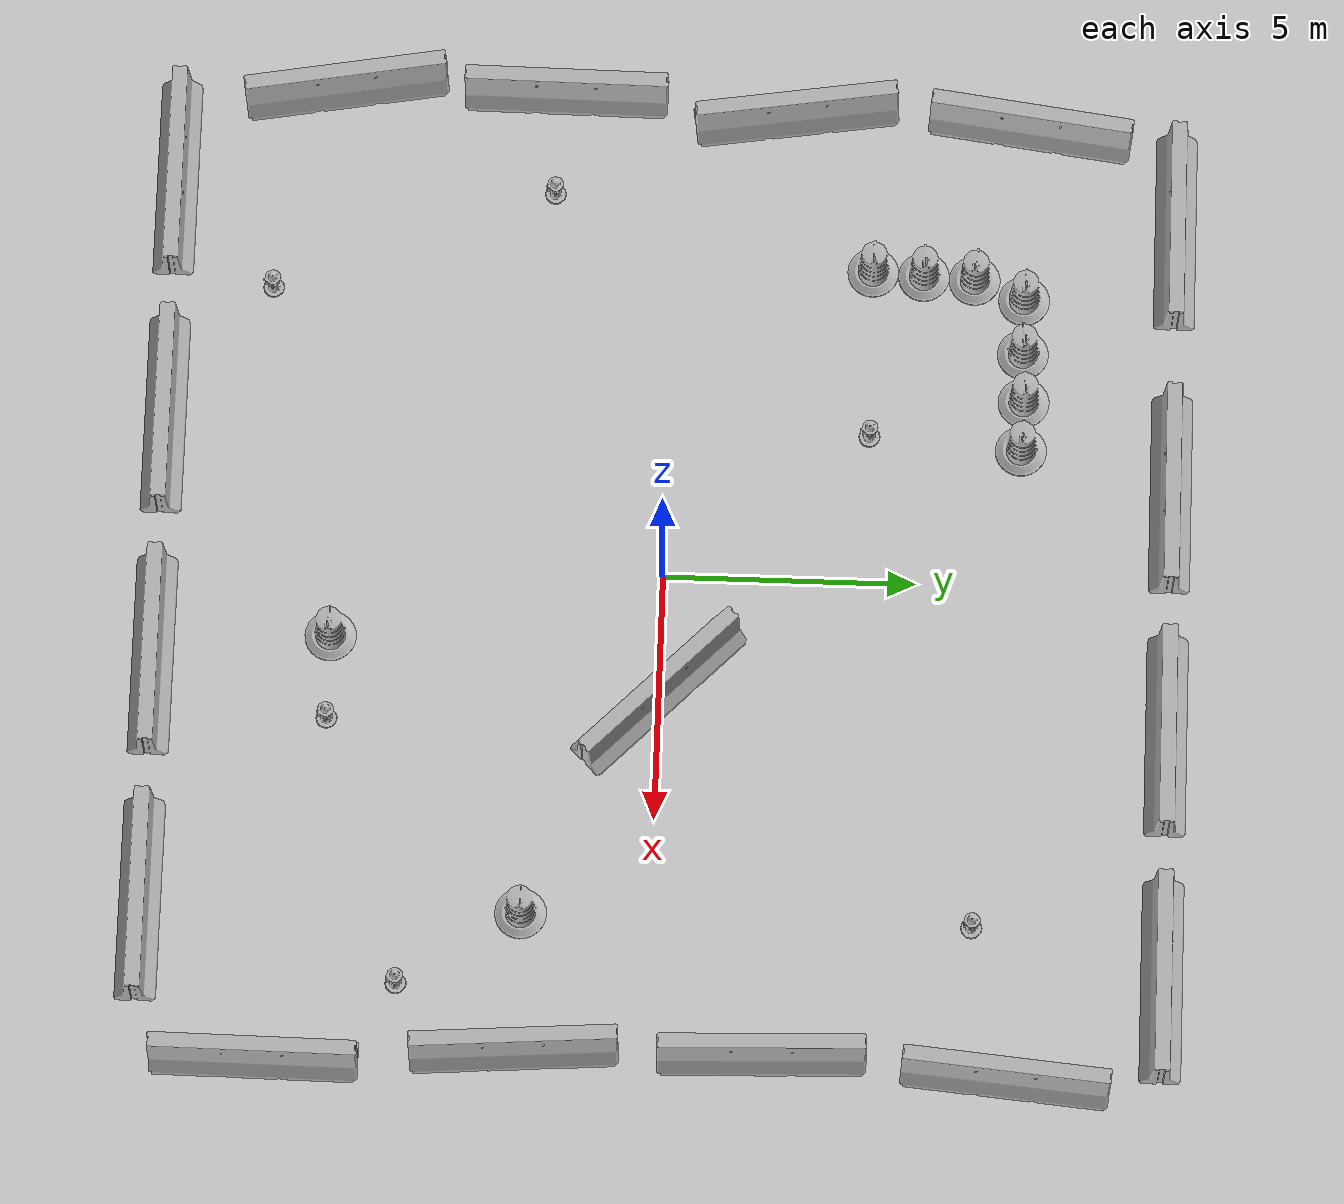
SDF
<sdf version="1.6">
 <world name="default">
  <light name="sun" type="directional">
   <pose>0 0 10 0 -0 0</pose>
   <diffuse>0.8 0.8 0.8 1</diffuse>
   <specular>0.2 0.2 0.2 1</specular>
   <attenuation>
    <range>1000</range>
    <constant>0.9</constant>
    <linear>0.01</linear>
    <quadratic>0.001</quadratic>
   </attenuation>
   <direction>-0.5 0.1 -0.9</direction>
  </light>
  <model name="ground_plane">
   <static>1</static>
   <link name="link">
    <collision name="collision">
     <geometry><plane><normal>0 0 1</normal><size>100 100</size></plane></geometry>
     <surface><friction><ode><mu>100</mu><mu2>50</mu2></ode></friction></surface>
    </collision>
    <visual name="visual">
     <cast_shadows>0</cast_shadows>
     <geometry><plane><normal>0 0 1</normal><size>100 100</size></plane></geometry>
     <material>
      <script><uri>file://media/materials/scripts/gazebo.material</uri><name>Gazebo/Grey</name></script>
     </material>
    </visual>
    <velocity_decay><linear>0</linear><angular>0</angular></velocity_decay>
   </link>
  </model>
  <physics type="ode">
   <max_step_size>0.01</max_step_size>
   <real_time_factor>1</real_time_factor>
   <real_time_update_rate>100</real_time_update_rate>
   <gravity>0 0 -9.8</gravity>
  </physics>
  <scene><ambient>0.4 0.4 0.4 1</ambient><background>0.7 0.7 0.7 1</background><shadows>1</shadows></scene>
  <model name="jersey_barrier">
   <static>1</static>
   <link name="link">
    <visual name="visual">
     <geometry>
      <mesh><uri>model://jersey_barrier/meshes/jersey_barrier.dae</uri><scale>1 1 1</scale></mesh>
     </geometry>
    </visual>
    <collision name="upright">
     <pose>0 0 0.5715 0 -0 0</pose>
     <geometry><box><size>4.06542 0.3063 1.143</size></box></geometry>
    </collision>
    <collision name="base">
     <pose>0 0 0.032258 0 -0 0</pose>
     <geometry><box><size>4.06542 0.8107 0.064516</size></box></geometry>
    </collision>
    <collision name="base2">
     <pose>0 0 0.1 0 -0 0</pose>
     <geometry><box><size>4.06542 0.65 0.1</size></box></geometry>
    </collision>
    <collision name="base3">
     <pose>0 0 0.2 0 -0 0</pose>
     <geometry><box><size>4.06542 0.5 0.1</size></box></geometry>
    </collision>
    <collision name="left-angle">
     <pose>0 -0.224 0.2401 0.9 -0 0</pose>
     <geometry><box><size>4.06542 0.5 0.064516</size></box></geometry>
    </collision>
    <collision name="right-angle">
     <pose>0 0.224 0.2401 -0.9 0 0</pose>
     <geometry><box><size>4.06542 0.5 0.064516</size></box></geometry>
    </collision>
    <velocity_decay><linear>0</linear><angular>0</angular></velocity_decay>
   </link>
   <pose>-8 -10 0 0 -0 0</pose>
  </model>
  <model name="jersey_barrier_0">
   <static>1</static>
   <link name="link">
    <visual name="visual">
     <geometry>
      <mesh><uri>model://jersey_barrier/meshes/jersey_barrier.dae</uri><scale>1 1 1</scale></mesh>
     </geometry>
    </visual>
    <collision name="upright">
     <pose>0 0 0.5715 0 -0 0</pose>
     <geometry><box><size>4.06542 0.3063 1.143</size></box></geometry>
    </collision>
    <collision name="base">
     <pose>0 0 0.032258 0 -0 0</pose>
     <geometry><box><size>4.06542 0.8107 0.064516</size></box></geometry>
    </collision>
    <collision name="base2">
     <pose>0 0 0.1 0 -0 0</pose>
     <geometry><box><size>4.06542 0.65 0.1</size></box></geometry>
    </collision>
    <collision name="base3">
     <pose>0 0 0.2 0 -0 0</pose>
     <geometry><box><size>4.06542 0.5 0.1</size></box></geometry>
    </collision>
    <collision name="left-angle">
     <pose>0 -0.224 0.2401 0.9 -0 0</pose>
     <geometry><box><size>4.06542 0.5 0.064516</size></box></geometry>
    </collision>
    <collision name="right-angle">
     <pose>0 0.224 0.2401 -0.9 0 0</pose>
     <geometry><box><size>4.06542 0.5 0.064516</size></box></geometry>
    </collision>
    <velocity_decay><linear>0</linear><angular>0</angular></velocity_decay>
   </link>
   <pose>-3 -10 0 0 -0 0</pose>
  </model>
  <model name="jersey_barrier_1">
   <static>1</static>
   <link name="link">
    <visual name="visual">
     <geometry>
      <mesh><uri>model://jersey_barrier/meshes/jersey_barrier.dae</uri><scale>1 1 1</scale></mesh>
     </geometry>
    </visual>
    <collision name="upright">
     <pose>0 0 0.5715 0 -0 0</pose>
     <geometry><box><size>4.06542 0.3063 1.143</size></box></geometry>
    </collision>
    <collision name="base">
     <pose>0 0 0.032258 0 -0 0</pose>
     <geometry><box><size>4.06542 0.8107 0.064516</size></box></geometry>
    </collision>
    <collision name="base2">
     <pose>0 0 0.1 0 -0 0</pose>
     <geometry><box><size>4.06542 0.65 0.1</size></box></geometry>
    </collision>
    <collision name="base3">
     <pose>0 0 0.2 0 -0 0</pose>
     <geometry><box><size>4.06542 0.5 0.1</size></box></geometry>
    </collision>
    <collision name="left-angle">
     <pose>0 -0.224 0.2401 0.9 -0 0</pose>
     <geometry><box><size>4.06542 0.5 0.064516</size></box></geometry>
    </collision>
    <collision name="right-angle">
     <pose>0 0.224 0.2401 -0.9 0 0</pose>
     <geometry><box><size>4.06542 0.5 0.064516</size></box></geometry>
    </collision>
    <velocity_decay><linear>0</linear><angular>0</angular></velocity_decay>
   </link>
   <pose>2 -10 0 0 -0 0</pose>
  </model>
  <model name="jersey_barrier_2">
   <static>1</static>
   <link name="link">
    <visual name="visual">
     <geometry>
      <mesh><uri>model://jersey_barrier/meshes/jersey_barrier.dae</uri><scale>1 1 1</scale></mesh>
     </geometry>
    </visual>
    <collision name="upright">
     <pose>0 0 0.5715 0 -0 0</pose>
     <geometry><box><size>4.06542 0.3063 1.143</size></box></geometry>
    </collision>
    <collision name="base">
     <pose>0 0 0.032258 0 -0 0</pose>
     <geometry><box><size>4.06542 0.8107 0.064516</size></box></geometry>
    </collision>
    <collision name="base2">
     <pose>0 0 0.1 0 -0 0</pose>
     <geometry><box><size>4.06542 0.65 0.1</size></box></geometry>
    </collision>
    <collision name="base3">
     <pose>0 0 0.2 0 -0 0</pose>
     <geometry><box><size>4.06542 0.5 0.1</size></box></geometry>
    </collision>
    <collision name="left-angle">
     <pose>0 -0.224 0.2401 0.9 -0 0</pose>
     <geometry><box><size>4.06542 0.5 0.064516</size></box></geometry>
    </collision>
    <collision name="right-angle">
     <pose>0 0.224 0.2401 -0.9 0 0</pose>
     <geometry><box><size>4.06542 0.5 0.064516</size></box></geometry>
    </collision>
    <velocity_decay><linear>0</linear><angular>0</angular></velocity_decay>
   </link>
   <pose>7 -10 0 0 -0 0</pose>
  </model>
  <model name="jersey_barrier_3">
   <static>1</static>
   <link name="link">
    <visual name="visual">
     <geometry>
      <mesh><uri>model://jersey_barrier/meshes/jersey_barrier.dae</uri><scale>1 1 1</scale></mesh>
     </geometry>
    </visual>
    <collision name="upright">
     <pose>0 0 0.5715 0 -0 0</pose>
     <geometry><box><size>4.06542 0.3063 1.143</size></box></geometry>
    </collision>
    <collision name="base">
     <pose>0 0 0.032258 0 -0 0</pose>
     <geometry><box><size>4.06542 0.8107 0.064516</size></box></geometry>
    </collision>
    <collision name="base2">
     <pose>0 0 0.1 0 -0 0</pose>
     <geometry><box><size>4.06542 0.65 0.1</size></box></geometry>
    </collision>
    <collision name="base3">
     <pose>0 0 0.2 0 -0 0</pose>
     <geometry><box><size>4.06542 0.5 0.1</size></box></geometry>
    </collision>
    <collision name="left-angle">
     <pose>0 -0.224 0.2401 0.9 -0 0</pose>
     <geometry><box><size>4.06542 0.5 0.064516</size></box></geometry>
    </collision>
    <collision name="right-angle">
     <pose>0 0.224 0.2401 -0.9 0 0</pose>
     <geometry><box><size>4.06542 0.5 0.064516</size></box></geometry>
    </collision>
    <velocity_decay><linear>0</linear><angular>0</angular></velocity_decay>
   </link>
   <pose>-7.50675 10 0 0 -0 0</pose>
  </model>
  <model name="jersey_barrier_4">
   <static>1</static>
   <link name="link">
    <visual name="visual">
     <geometry>
      <mesh><uri>model://jersey_barrier/meshes/jersey_barrier.dae</uri><scale>1 1 1</scale></mesh>
     </geometry>
    </visual>
    <collision name="upright">
     <pose>0 0 0.5715 0 -0 0</pose>
     <geometry><box><size>4.06542 0.3063 1.143</size></box></geometry>
    </collision>
    <collision name="base">
     <pose>0 0 0.032258 0 -0 0</pose>
     <geometry><box><size>4.06542 0.8107 0.064516</size></box></geometry>
    </collision>
    <collision name="base2">
     <pose>0 0 0.1 0 -0 0</pose>
     <geometry><box><size>4.06542 0.65 0.1</size></box></geometry>
    </collision>
    <collision name="base3">
     <pose>0 0 0.2 0 -0 0</pose>
     <geometry><box><size>4.06542 0.5 0.1</size></box></geometry>
    </collision>
    <collision name="left-angle">
     <pose>0 -0.224 0.2401 0.9 -0 0</pose>
     <geometry><box><size>4.06542 0.5 0.064516</size></box></geometry>
    </collision>
    <collision name="right-angle">
     <pose>0 0.224 0.2401 -0.9 0 0</pose>
     <geometry><box><size>4.06542 0.5 0.064516</size></box></geometry>
    </collision>
    <velocity_decay><linear>0</linear><angular>0</angular></velocity_decay>
   </link>
   <pose>-2 10 0 0 -0 0</pose>
  </model>
  <model name="jersey_barrier_5">
   <static>1</static>
   <link name="link">
    <visual name="visual">
     <geometry>
      <mesh><uri>model://jersey_barrier/meshes/jersey_barrier.dae</uri><scale>1 1 1</scale></mesh>
     </geometry>
    </visual>
    <collision name="upright">
     <pose>0 0 0.5715 0 -0 0</pose>
     <geometry><box><size>4.06542 0.3063 1.143</size></box></geometry>
    </collision>
    <collision name="base">
     <pose>0 0 0.032258 0 -0 0</pose>
     <geometry><box><size>4.06542 0.8107 0.064516</size></box></geometry>
    </collision>
    <collision name="base2">
     <pose>0 0 0.1 0 -0 0</pose>
     <geometry><box><size>4.06542 0.65 0.1</size></box></geometry>
    </collision>
    <collision name="base3">
     <pose>0 0 0.2 0 -0 0</pose>
     <geometry><box><size>4.06542 0.5 0.1</size></box></geometry>
    </collision>
    <collision name="left-angle">
     <pose>0 -0.224 0.2401 0.9 -0 0</pose>
     <geometry><box><size>4.06542 0.5 0.064516</size></box></geometry>
    </collision>
    <collision name="right-angle">
     <pose>0 0.224 0.2401 -0.9 0 0</pose>
     <geometry><box><size>4.06542 0.5 0.064516</size></box></geometry>
    </collision>
    <velocity_decay><linear>0</linear><angular>0</angular></velocity_decay>
   </link>
   <pose>3 10 0 0 -0 0</pose>
  </model>
  <model name="jersey_barrier_6">
   <static>1</static>
   <link name="link">
    <visual name="visual">
     <geometry>
      <mesh><uri>model://jersey_barrier/meshes/jersey_barrier.dae</uri><scale>1 1 1</scale></mesh>
     </geometry>
    </visual>
    <collision name="upright">
     <pose>0 0 0.5715 0 -0 0</pose>
     <geometry><box><size>4.06542 0.3063 1.143</size></box></geometry>
    </collision>
    <collision name="base">
     <pose>0 0 0.032258 0 -0 0</pose>
     <geometry><box><size>4.06542 0.8107 0.064516</size></box></geometry>
    </collision>
    <collision name="base2">
     <pose>0 0 0.1 0 -0 0</pose>
     <geometry><box><size>4.06542 0.65 0.1</size></box></geometry>
    </collision>
    <collision name="base3">
     <pose>0 0 0.2 0 -0 0</pose>
     <geometry><box><size>4.06542 0.5 0.1</size></box></geometry>
    </collision>
    <collision name="left-angle">
     <pose>0 -0.224 0.2401 0.9 -0 0</pose>
     <geometry><box><size>4.06542 0.5 0.064516</size></box></geometry>
    </collision>
    <collision name="right-angle">
     <pose>0 0.224 0.2401 -0.9 0 0</pose>
     <geometry><box><size>4.06542 0.5 0.064516</size></box></geometry>
    </collision>
    <velocity_decay><linear>0</linear><angular>0</angular></velocity_decay>
   </link>
   <pose>8 10 0 0 -0 0</pose>
  </model>
  <model name="jersey_barrier_7">
   <static>1</static>
   <link name="link">
    <visual name="visual">
     <geometry>
      <mesh><uri>model://jersey_barrier/meshes/jersey_barrier.dae</uri><scale>1 1 1</scale></mesh>
     </geometry>
    </visual>
    <collision name="upright">
     <pose>0 0 0.5715 0 -0 0</pose>
     <geometry><box><size>4.06542 0.3063 1.143</size></box></geometry>
    </collision>
    <collision name="base">
     <pose>0 0 0.032258 0 -0 0</pose>
     <geometry><box><size>4.06542 0.8107 0.064516</size></box></geometry>
    </collision>
    <collision name="base2">
     <pose>0 0 0.1 0 -0 0</pose>
     <geometry><box><size>4.06542 0.65 0.1</size></box></geometry>
    </collision>
    <collision name="base3">
     <pose>0 0 0.2 0 -0 0</pose>
     <geometry><box><size>4.06542 0.5 0.1</size></box></geometry>
    </collision>
    <collision name="left-angle">
     <pose>0 -0.224 0.2401 0.9 -0 0</pose>
     <geometry><box><size>4.06542 0.5 0.064516</size></box></geometry>
    </collision>
    <collision name="right-angle">
     <pose>0 0.224 0.2401 -0.9 0 0</pose>
     <geometry><box><size>4.06542 0.5 0.064516</size></box></geometry>
    </collision>
    <velocity_decay><linear>0</linear><angular>0</angular></velocity_decay>
   </link>
   <pose>9.74902 -2.57759 0 0 -0 1.64</pose>
  </model>
  <model name="jersey_barrier_8">
   <static>1</static>
   <link name="link">
    <visual name="visual">
     <geometry>
      <mesh><uri>model://jersey_barrier/meshes/jersey_barrier.dae</uri><scale>1 1 1</scale></mesh>
     </geometry>
    </visual>
    <collision name="upright">
     <pose>0 0 0.5715 0 -0 0</pose>
     <geometry><box><size>4.06542 0.3063 1.143</size></box></geometry>
    </collision>
    <collision name="base">
     <pose>0 0 0.032258 0 -0 0</pose>
     <geometry><box><size>4.06542 0.8107 0.064516</size></box></geometry>
    </collision>
    <collision name="base2">
     <pose>0 0 0.1 0 -0 0</pose>
     <geometry><box><size>4.06542 0.65 0.1</size></box></geometry>
    </collision>
    <collision name="base3">
     <pose>0 0 0.2 0 -0 0</pose>
     <geometry><box><size>4.06542 0.5 0.1</size></box></geometry>
    </collision>
    <collision name="left-angle">
     <pose>0 -0.224 0.2401 0.9 -0 0</pose>
     <geometry><box><size>4.06542 0.5 0.064516</size></box></geometry>
    </collision>
    <collision name="right-angle">
     <pose>0 0.224 0.2401 -0.9 0 0</pose>
     <geometry><box><size>4.06542 0.5 0.064516</size></box></geometry>
    </collision>
    <velocity_decay><linear>0</linear><angular>0</angular></velocity_decay>
   </link>
   <pose>9.70141 2.24369 0 0 -0 1.6</pose>
  </model>
  <model name="jersey_barrier_9">
   <static>1</static>
   <link name="link">
    <visual name="visual">
     <geometry>
      <mesh><uri>model://jersey_barrier/meshes/jersey_barrier.dae</uri><scale>1 1 1</scale></mesh>
     </geometry>
    </visual>
    <collision name="upright">
     <pose>0 0 0.5715 0 -0 0</pose>
     <geometry><box><size>4.06542 0.3063 1.143</size></box></geometry>
    </collision>
    <collision name="base">
     <pose>0 0 0.032258 0 -0 0</pose>
     <geometry><box><size>4.06542 0.8107 0.064516</size></box></geometry>
    </collision>
    <collision name="base2">
     <pose>0 0 0.1 0 -0 0</pose>
     <geometry><box><size>4.06542 0.65 0.1</size></box></geometry>
    </collision>
    <collision name="base3">
     <pose>0 0 0.2 0 -0 0</pose>
     <geometry><box><size>4.06542 0.5 0.1</size></box></geometry>
    </collision>
    <collision name="left-angle">
     <pose>0 -0.224 0.2401 0.9 -0 0</pose>
     <geometry><box><size>4.06542 0.5 0.064516</size></box></geometry>
    </collision>
    <collision name="right-angle">
     <pose>0 0.224 0.2401 -0.9 0 0</pose>
     <geometry><box><size>4.06542 0.5 0.064516</size></box></geometry>
    </collision>
    <velocity_decay><linear>0</linear><angular>0</angular></velocity_decay>
   </link>
   <pose>-10.0607 -6.69856 0 0 0 -1.4</pose>
  </model>
  <model name="jersey_barrier_10">
   <static>1</static>
   <link name="link">
    <visual name="visual">
     <geometry>
      <mesh><uri>model://jersey_barrier/meshes/jersey_barrier.dae</uri><scale>1 1 1</scale></mesh>
     </geometry>
    </visual>
    <collision name="upright">
     <pose>0 0 0.5715 0 -0 0</pose>
     <geometry><box><size>4.06542 0.3063 1.143</size></box></geometry>
    </collision>
    <collision name="base">
     <pose>0 0 0.032258 0 -0 0</pose>
     <geometry><box><size>4.06542 0.8107 0.064516</size></box></geometry>
    </collision>
    <collision name="base2">
     <pose>0 0 0.1 0 -0 0</pose>
     <geometry><box><size>4.06542 0.65 0.1</size></box></geometry>
    </collision>
    <collision name="base3">
     <pose>0 0 0.2 0 -0 0</pose>
     <geometry><box><size>4.06542 0.5 0.1</size></box></geometry>
    </collision>
    <collision name="left-angle">
     <pose>0 -0.224 0.2401 0.9 -0 0</pose>
     <geometry><box><size>4.06542 0.5 0.064516</size></box></geometry>
    </collision>
    <collision name="right-angle">
     <pose>0 0.224 0.2401 -0.9 0 0</pose>
     <geometry><box><size>4.06542 0.5 0.064516</size></box></geometry>
    </collision>
    <velocity_decay><linear>0</linear><angular>0</angular></velocity_decay>
   </link>
   <pose>-10.0774 -2.27159 0 0 -0 1.56</pose>
  </model>
  <model name="jersey_barrier_11">
   <static>1</static>
   <link name="link">
    <visual name="visual">
     <geometry>
      <mesh><uri>model://jersey_barrier/meshes/jersey_barrier.dae</uri><scale>1 1 1</scale></mesh>
     </geometry>
    </visual>
    <collision name="upright">
     <pose>0 0 0.5715 0 -0 0</pose>
     <geometry><box><size>4.06542 0.3063 1.143</size></box></geometry>
    </collision>
    <collision name="base">
     <pose>0 0 0.032258 0 -0 0</pose>
     <geometry><box><size>4.06542 0.8107 0.064516</size></box></geometry>
    </collision>
    <collision name="base2">
     <pose>0 0 0.1 0 -0 0</pose>
     <geometry><box><size>4.06542 0.65 0.1</size></box></geometry>
    </collision>
    <collision name="base3">
     <pose>0 0 0.2 0 -0 0</pose>
     <geometry><box><size>4.06542 0.5 0.1</size></box></geometry>
    </collision>
    <collision name="left-angle">
     <pose>0 -0.224 0.2401 0.9 -0 0</pose>
     <geometry><box><size>4.06542 0.5 0.064516</size></box></geometry>
    </collision>
    <collision name="right-angle">
     <pose>0 0.224 0.2401 -0.9 0 0</pose>
     <geometry><box><size>4.06542 0.5 0.064516</size></box></geometry>
    </collision>
    <velocity_decay><linear>0</linear><angular>0</angular></velocity_decay>
   </link>
   <pose>-9.77013 2.34791 0 0 -0 1.72</pose>
  </model>
  <model name="jersey_barrier_12">
   <static>1</static>
   <link name="link">
    <visual name="visual">
     <geometry>
      <mesh><uri>model://jersey_barrier/meshes/jersey_barrier.dae</uri><scale>1 1 1</scale></mesh>
     </geometry>
    </visual>
    <collision name="upright">
     <pose>0 0 0.5715 0 -0 0</pose>
     <geometry><box><size>4.06542 0.3063 1.143</size></box></geometry>
    </collision>
    <collision name="base">
     <pose>0 0 0.032258 0 -0 0</pose>
     <geometry><box><size>4.06542 0.8107 0.064516</size></box></geometry>
    </collision>
    <collision name="base2">
     <pose>0 0 0.1 0 -0 0</pose>
     <geometry><box><size>4.06542 0.65 0.1</size></box></geometry>
    </collision>
    <collision name="base3">
     <pose>0 0 0.2 0 -0 0</pose>
     <geometry><box><size>4.06542 0.5 0.1</size></box></geometry>
    </collision>
    <collision name="left-angle">
     <pose>0 -0.224 0.2401 0.9 -0 0</pose>
     <geometry><box><size>4.06542 0.5 0.064516</size></box></geometry>
    </collision>
    <collision name="right-angle">
     <pose>0 0.224 0.2401 -0.9 0 0</pose>
     <geometry><box><size>4.06542 0.5 0.064516</size></box></geometry>
    </collision>
    <velocity_decay><linear>0</linear><angular>0</angular></velocity_decay>
   </link>
   <pose>10.0879 -7.62159 0 0 -0 1.56</pose>
  </model>
  <model name="jersey_barrier_13">
   <static>1</static>
   <link name="link">
    <visual name="visual">
     <geometry>
      <mesh><uri>model://jersey_barrier/meshes/jersey_barrier.dae</uri><scale>1 1 1</scale></mesh>
     </geometry>
    </visual>
    <collision name="upright">
     <pose>0 0 0.5715 0 -0 0</pose>
     <geometry><box><size>4.06542 0.3063 1.143</size></box></geometry>
    </collision>
    <collision name="base">
     <pose>0 0 0.032258 0 -0 0</pose>
     <geometry><box><size>4.06542 0.8107 0.064516</size></box></geometry>
    </collision>
    <collision name="base2">
     <pose>0 0 0.1 0 -0 0</pose>
     <geometry><box><size>4.06542 0.65 0.1</size></box></geometry>
    </collision>
    <collision name="base3">
     <pose>0 0 0.2 0 -0 0</pose>
     <geometry><box><size>4.06542 0.5 0.1</size></box></geometry>
    </collision>
    <collision name="left-angle">
     <pose>0 -0.224 0.2401 0.9 -0 0</pose>
     <geometry><box><size>4.06542 0.5 0.064516</size></box></geometry>
    </collision>
    <collision name="right-angle">
     <pose>0 0.224 0.2401 -0.9 0 0</pose>
     <geometry><box><size>4.06542 0.5 0.064516</size></box></geometry>
    </collision>
    <velocity_decay><linear>0</linear><angular>0</angular></velocity_decay>
   </link>
   <pose>10 7 0 0 -0 1.48</pose>
  </model>
  <model name="jersey_barrier_14">
   <static>1</static>
   <link name="link">
    <visual name="visual">
     <geometry>
      <mesh><uri>model://jersey_barrier/meshes/jersey_barrier.dae</uri><scale>1 1 1</scale></mesh>
     </geometry>
    </visual>
    <collision name="upright">
     <pose>0 0 0.5715 0 -0 0</pose>
     <geometry><box><size>4.06542 0.3063 1.143</size></box></geometry>
    </collision>
    <collision name="base">
     <pose>0 0 0.032258 0 -0 0</pose>
     <geometry><box><size>4.06542 0.8107 0.064516</size></box></geometry>
    </collision>
    <collision name="base2">
     <pose>0 0 0.1 0 -0 0</pose>
     <geometry><box><size>4.06542 0.65 0.1</size></box></geometry>
    </collision>
    <collision name="base3">
     <pose>0 0 0.2 0 -0 0</pose>
     <geometry><box><size>4.06542 0.5 0.1</size></box></geometry>
    </collision>
    <collision name="left-angle">
     <pose>0 -0.224 0.2401 0.9 -0 0</pose>
     <geometry><box><size>4.06542 0.5 0.064516</size></box></geometry>
    </collision>
    <collision name="right-angle">
     <pose>0 0.224 0.2401 -0.9 0 0</pose>
     <geometry><box><size>4.06542 0.5 0.064516</size></box></geometry>
    </collision>
    <velocity_decay><linear>0</linear><angular>0</angular></velocity_decay>
   </link>
   <pose>-9.64482 7.05946 0 0 -0 1.44</pose>
  </model>
  <model name="fire_hydrant">
   <static>1</static>
   <link name="link">
    <collision name="collision">
     <geometry><mesh><uri>model://fire_hydrant/meshes/fire_hydrant.dae</uri><scale>1 1 1</scale></mesh></geometry>
    </collision>
    <visual name="visual">
     <geometry><mesh><uri>model://fire_hydrant/meshes/fire_hydrant.dae</uri><scale>1 1 1</scale></mesh></geometry>
    </visual>
    <velocity_decay><linear>0</linear><angular>0</angular></velocity_decay>
   </link>
   <pose>3.18024 -6.51118 0 0 -0 0</pose>
  </model>
  <model name="fire_hydrant_0">
   <static>1</static>
   <link name="link">
    <collision name="collision">
     <geometry><mesh><uri>model://fire_hydrant/meshes/fire_hydrant.dae</uri><scale>1 1 1</scale></mesh></geometry>
    </collision>
    <visual name="visual">
     <geometry><mesh><uri>model://fire_hydrant/meshes/fire_hydrant.dae</uri><scale>1 1 1</scale></mesh></geometry>
    </visual>
    <velocity_decay><linear>0</linear><angular>0</angular></velocity_decay>
   </link>
   <pose>-3 4 0 0 -0 0</pose>
  </model>
  <model name="fire_hydrant_1">
   <static>1</static>
   <link name="link">
    <collision name="collision">
     <geometry><mesh><uri>model://fire_hydrant/meshes/fire_hydrant.dae</uri><scale>1 1 1</scale></mesh></geometry>
    </collision>
    <visual name="visual">
     <geometry><mesh><uri>model://fire_hydrant/meshes/fire_hydrant.dae</uri><scale>1 1 1</scale></mesh></geometry>
    </visual>
    <velocity_decay><linear>0</linear><angular>0</angular></velocity_decay>
   </link>
   <pose>-7.90686 -2.41363 0 0 -0 0</pose>
  </model>
  <model name="jersey_barrier_15">
   <static>1</static>
   <link name="link">
    <visual name="visual">
     <geometry>
      <mesh><uri>model://jersey_barrier/meshes/jersey_barrier.dae</uri><scale>1 1 1</scale></mesh>
     </geometry>
    </visual>
    <collision name="upright">
     <pose>0 0 0.5715 0 -0 0</pose>
     <geometry><box><size>4.06542 0.3063 1.143</size></box></geometry>
    </collision>
    <collision name="base">
     <pose>0 0 0.032258 0 -0 0</pose>
     <geometry><box><size>4.06542 0.8107 0.064516</size></box></geometry>
    </collision>
    <collision name="base2">
     <pose>0 0 0.1 0 -0 0</pose>
     <geometry><box><size>4.06542 0.65 0.1</size></box></geometry>
    </collision>
    <collision name="base3">
     <pose>0 0 0.2 0 -0 0</pose>
     <geometry><box><size>4.06542 0.5 0.1</size></box></geometry>
    </collision>
    <collision name="left-angle">
     <pose>0 -0.224 0.2401 0.9 -0 0</pose>
     <geometry><box><size>4.06542 0.5 0.064516</size></box></geometry>
    </collision>
    <collision name="right-angle">
     <pose>0 0.224 0.2401 -0.9 0 0</pose>
     <geometry><box><size>4.06542 0.5 0.064516</size></box></geometry>
    </collision>
    <velocity_decay><linear>0</linear><angular>0</angular></velocity_decay>
   </link>
   <pose>2.45495 0 0 0 -0 2.36</pose>
  </model>
  <model name="Construction Barrel">
   <link name="link">
    <inertial>
     <pose>0 0 0.4 0 -0 0</pose>
     <mass>500</mass>
     <inertia><ixx>51.2096</ixx><iyy>51.2096</iyy><izz>25</izz><ixy>0</ixy><ixz>0</ixz><iyz>0</iyz></inertia>
    </inertial>
    <collision name="collision">
     <geometry>
      <mesh><uri>model://construction_barrel/meshes/construction_barrel.dae</uri><scale>1 1 1</scale></mesh>
     </geometry>
    </collision>
    <visual name="visual">
     <geometry>
      <mesh><uri>model://construction_barrel/meshes/construction_barrel.dae</uri><scale>1 1 1</scale></mesh>
     </geometry>
    </visual>
    <velocity_decay><linear>0</linear><angular>0</angular></velocity_decay>
   </link>
   <pose>7.00029 -2.54664 -9e-05 0.000308 -0.000178 -0.00064</pose>
   <static>0</static>
  </model>
  <model name="Construction Barrel_0">
   <link name="link">
    <inertial>
     <pose>0 0 0.4 0 -0 0</pose>
     <mass>500</mass>
     <inertia><ixx>51.2096</ixx><iyy>51.2096</iyy><izz>25</izz><ixy>0</ixy><ixz>0</ixz><iyz>0</iyz></inertia>
    </inertial>
    <collision name="collision">
     <geometry>
      <mesh><uri>model://construction_barrel/meshes/construction_barrel.dae</uri><scale>1 1 1</scale></mesh>
     </geometry>
    </collision>
    <visual name="visual">
     <geometry>
      <mesh><uri>model://construction_barrel/meshes/construction_barrel.dae</uri><scale>1 1 1</scale></mesh>
     </geometry>
    </visual>
    <velocity_decay><linear>0</linear><angular>0</angular></velocity_decay>
   </link>
   <pose>1.45168 -6.51144 -9e-05 0.000308 -0.000178 -0.000425</pose>
   <static>0</static>
  </model>
  <model name="Construction Barrel_1">
   <link name="link">
    <inertial>
     <pose>0 0 0.4 0 -0 0</pose>
     <mass>500</mass>
     <inertia><ixx>51.2096</ixx><iyy>51.2096</iyy><izz>25</izz><ixy>0</ixy><ixz>0</ixz><iyz>0</iyz></inertia>
    </inertial>
    <collision name="collision">
     <geometry>
      <mesh><uri>model://construction_barrel/meshes/construction_barrel.dae</uri><scale>1 1 1</scale></mesh>
     </geometry>
    </collision>
    <visual name="visual">
     <geometry>
      <mesh><uri>model://construction_barrel/meshes/construction_barrel.dae</uri><scale>1 1 1</scale></mesh>
     </geometry>
    </visual>
    <velocity_decay><linear>0</linear><angular>0</angular></velocity_decay>
   </link>
   <pose>-6.50478 3.98235 -9.1e-05 0.000308 -0.000178 -0.010467</pose>
   <static>0</static>
  </model>
  <model name="Construction Barrel_2">
   <link name="link">
    <inertial>
     <pose>0 0 0.4 0 -0 0</pose>
     <mass>500</mass>
     <inertia><ixx>51.2096</ixx><iyy>51.2096</iyy><izz>25</izz><ixy>0</ixy><ixz>0</ixz><iyz>0</iyz></inertia>
    </inertial>
    <collision name="collision">
     <geometry>
      <mesh><uri>model://construction_barrel/meshes/construction_barrel.dae</uri><scale>1 1 1</scale></mesh>
     </geometry>
    </collision>
    <visual name="visual">
     <geometry>
      <mesh><uri>model://construction_barrel/meshes/construction_barrel.dae</uri><scale>1 1 1</scale></mesh>
     </geometry>
    </visual>
    <velocity_decay><linear>0</linear><angular>0</angular></velocity_decay>
   </link>
   <pose>-6.45073 4.99633 -8.8e-05 -8.4e-05 0.000333 0.064702</pose>
   <static>0</static>
  </model>
  <model name="Construction Barrel_3">
   <link name="link">
    <inertial>
     <pose>0 0 0.4 0 -0 0</pose>
     <mass>500</mass>
     <inertia><ixx>51.2096</ixx><iyy>51.2096</iyy><izz>25</izz><ixy>0</ixy><ixz>0</ixz><iyz>0</iyz></inertia>
    </inertial>
    <collision name="collision">
     <geometry>
      <mesh><uri>model://construction_barrel/meshes/construction_barrel.dae</uri><scale>1 1 1</scale></mesh>
     </geometry>
    </collision>
    <visual name="visual">
     <geometry>
      <mesh><uri>model://construction_barrel/meshes/construction_barrel.dae</uri><scale>1 1 1</scale></mesh>
     </geometry>
    </visual>
    <velocity_decay><linear>0</linear><angular>0</angular></velocity_decay>
   </link>
   <pose>-6.40191 6.01072 -9.1e-05 0.00031 -0.000179 -0.121541</pose>
   <static>0</static>
  </model>
  <model name="Construction Barrel_4">
   <link name="link">
    <inertial>
     <pose>0 0 0.4 0 -0 0</pose>
     <mass>500</mass>
     <inertia><ixx>51.2096</ixx><iyy>51.2096</iyy><izz>25</izz><ixy>0</ixy><ixz>0</ixz><iyz>0</iyz></inertia>
    </inertial>
    <collision name="collision">
     <geometry>
      <mesh><uri>model://construction_barrel/meshes/construction_barrel.dae</uri><scale>1 1 1</scale></mesh>
     </geometry>
    </collision>
    <visual name="visual">
     <geometry>
      <mesh><uri>model://construction_barrel/meshes/construction_barrel.dae</uri><scale>1 1 1</scale></mesh>
     </geometry>
    </visual>
    <velocity_decay><linear>0</linear><angular>0</angular></velocity_decay>
   </link>
   <pose>-6.00644 7.00857 -8.8e-05 -8.1e-05 0.000332 -0.050092</pose>
   <static>0</static>
  </model>
  <model name="Construction Barrel_5">
   <link name="link">
    <inertial>
     <pose>0 0 0.4 0 -0 0</pose>
     <mass>500</mass>
     <inertia><ixx>51.2096</ixx><iyy>51.2096</iyy><izz>25</izz><ixy>0</ixy><ixz>0</ixz><iyz>0</iyz></inertia>
    </inertial>
    <collision name="collision">
     <geometry>
      <mesh><uri>model://construction_barrel/meshes/construction_barrel.dae</uri><scale>1 1 1</scale></mesh>
     </geometry>
    </collision>
    <visual name="visual">
     <geometry>
      <mesh><uri>model://construction_barrel/meshes/construction_barrel.dae</uri><scale>1 1 1</scale></mesh>
     </geometry>
    </visual>
    <velocity_decay><linear>0</linear><angular>0</angular></velocity_decay>
   </link>
   <pose>-4.87587 7.00816 -9e-05 0.000304 -0.000176 0.146055</pose>
   <static>0</static>
  </model>
  <model name="Construction Barrel_6">
   <link name="link">
    <inertial>
     <pose>0 0 0.4 0 -0 0</pose>
     <mass>500</mass>
     <inertia><ixx>51.2096</ixx><iyy>51.2096</iyy><izz>25</izz><ixy>0</ixy><ixz>0</ixz><iyz>0</iyz></inertia>
    </inertial>
    <collision name="collision">
     <geometry>
      <mesh><uri>model://construction_barrel/meshes/construction_barrel.dae</uri><scale>1 1 1</scale></mesh>
     </geometry>
    </collision>
    <visual name="visual">
     <geometry>
      <mesh><uri>model://construction_barrel/meshes/construction_barrel.dae</uri><scale>1 1 1</scale></mesh>
     </geometry>
    </visual>
    <velocity_decay><linear>0</linear><angular>0</angular></velocity_decay>
   </link>
   <pose>-3.86129 7.04539 -9e-05 0.000306 -0.000177 0.06679</pose>
   <static>0</static>
  </model>
  <model name="Construction Barrel_7">
   <link name="link">
    <inertial>
     <pose>0 0 0.4 0 -0 0</pose>
     <mass>500</mass>
     <inertia><ixx>51.2096</ixx><iyy>51.2096</iyy><izz>25</izz><ixy>0</ixy><ixz>0</ixz><iyz>0</iyz></inertia>
    </inertial>
    <collision name="collision">
     <geometry>
      <mesh><uri>model://construction_barrel/meshes/construction_barrel.dae</uri><scale>1 1 1</scale></mesh>
     </geometry>
    </collision>
    <visual name="visual">
     <geometry>
      <mesh><uri>model://construction_barrel/meshes/construction_barrel.dae</uri><scale>1 1 1</scale></mesh>
     </geometry>
    </visual>
    <velocity_decay><linear>0</linear><angular>0</angular></velocity_decay>
   </link>
   <pose>-2.8458 7.01445 -9.1e-05 0.000309 -0.000178 -0.041845</pose>
   <static>0</static>
  </model>
  <gravity>0 0 -9.8</gravity>
  <magnetic_field>6e-06 2.3e-05 -4.2e-05</magnetic_field>
  <atmosphere type="adiabatic"/>
  <spherical_coordinates>
   <surface_model>EARTH_WGS84</surface_model>
   <latitude_deg>0</latitude_deg>
   <longitude_deg>0</longitude_deg>
   <elevation>0</elevation>
   <heading_deg>0</heading_deg>
  </spherical_coordinates>
  <model name="fire_hydrant_1_clone">
   <static>1</static>
   <link name="link">
    <collision name="collision">
     <geometry><mesh><uri>model://fire_hydrant/meshes/fire_hydrant.dae</uri><scale>1 1 1</scale></mesh></geometry>
    </collision>
    <visual name="visual">
     <geometry><mesh><uri>model://fire_hydrant/meshes/fire_hydrant.dae</uri><scale>1 1 1</scale></mesh></geometry>
    </visual>
    <velocity_decay><linear>0</linear><angular>0</angular></velocity_decay>
   </link>
   <pose>-5.74674 -7.95866 0 0 -0 0</pose>
  </model>
  <model name="fire_hydrant_clone">
   <static>1</static>
   <link name="link">
    <collision name="collision">
     <geometry><mesh><uri>model://fire_hydrant/meshes/fire_hydrant.dae</uri><scale>1 1 1</scale></mesh></geometry>
    </collision>
    <visual name="visual">
     <geometry><mesh><uri>model://fire_hydrant/meshes/fire_hydrant.dae</uri><scale>1 1 1</scale></mesh></geometry>
    </visual>
    <velocity_decay><linear>0</linear><angular>0</angular></velocity_decay>
   </link>
   <pose>8.52647 -4.92439 0 0 -0 0</pose>
  </model>
  <model name="fire_hydrant_clone_clone">
   <static>1</static>
   <link name="link">
    <collision name="collision">
     <geometry><mesh><uri>model://fire_hydrant/meshes/fire_hydrant.dae</uri><scale>1 1 1</scale></mesh></geometry>
    </collision>
    <visual name="visual">
     <geometry><mesh><uri>model://fire_hydrant/meshes/fire_hydrant.dae</uri><scale>1 1 1</scale></mesh></geometry>
    </visual>
    <velocity_decay><linear>0</linear><angular>0</angular></velocity_decay>
   </link>
   <pose>7.03867 6.26427 0 0 -0 0</pose>
  </model>
 </world>
</sdf>
